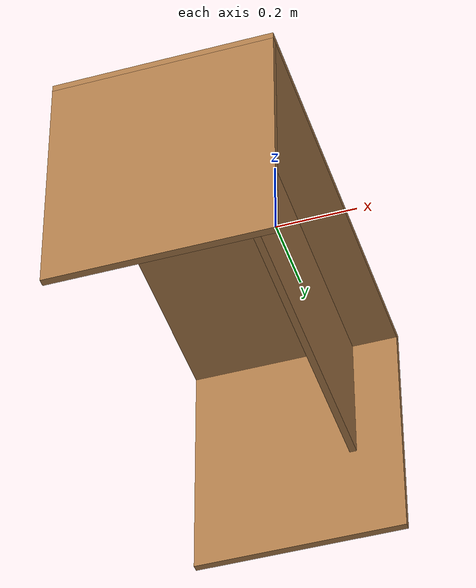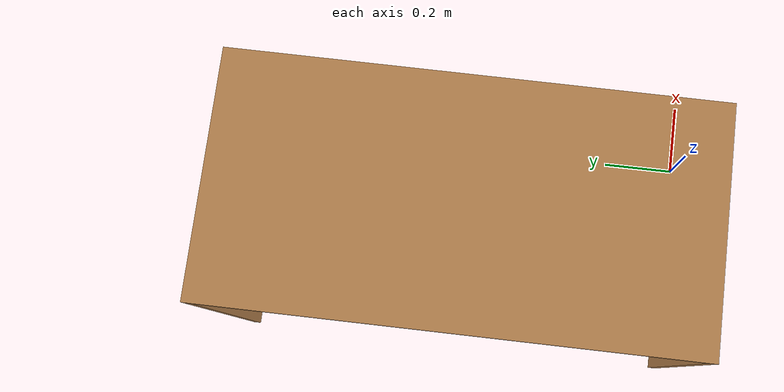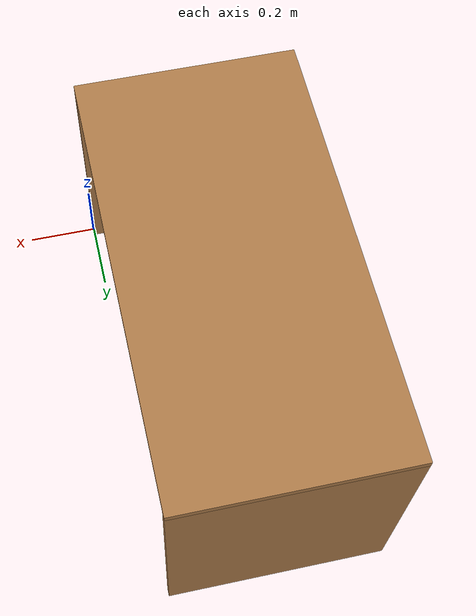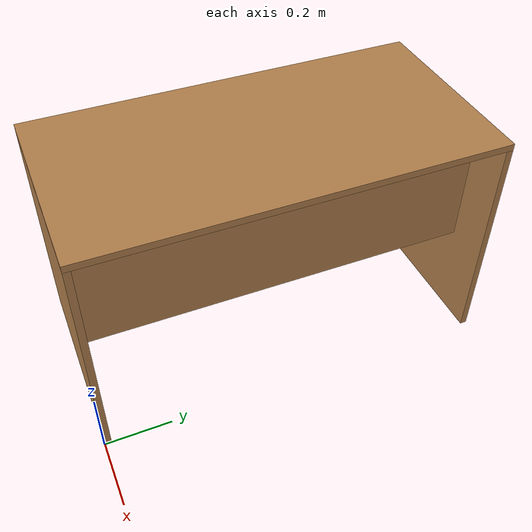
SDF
<?xml version="1.0" ?>
<sdf version="1.4">
    <model name='office_desk'>
      <link name='link'>
        <pose>0.0 0.0 0.0 0 0 0</pose>
        <inertial>
          <mass>10.0</mass>
          <inertia>
            <ixx>1</ixx>
            <ixy>0</ixy>
            <ixz>0</ixz>
            <iyy>1</iyy>
            <iyz>0</iyz>
            <izz>1</izz>
          </inertia>
        </inertial>
        <visual name='top_board'>
          <pose>-0.3 0.6 0.69 0 0 0</pose>
          <geometry>
            <box>
              <size>0.6 1.2 0.02</size>
            </box>
          </geometry>
          <material>
            <script>
              <uri>model://base_materials/wood/scripts/wood.material</uri>
              <name>base_materials/dark_wood</name>
            </script>
          </material>
        </visual>
        <collision name='collision_top_board'>
          <pose>-0.3 0.6 0.69 0 0 0</pose>
          <geometry>
            <box>
              <size>0.6 1.2 0.02</size>
            </box>
          </geometry>
          <max_contacts>10</max_contacts>
          <surface>
            <bounce/>
            <friction>
              <ode/>
            </friction>
            <contact>
              <ode/>
            </contact>
          </surface>
        </collision>
        <visual name='left_board'>
          <pose>-0.3 0.01 0.34 0 0 0</pose>
          <geometry>
            <box>
              <size>0.6 0.02 0.68</size>
            </box>
          </geometry>
          <material>
            <script>
              <uri>model://base_materials/wood/scripts/wood.material</uri>
              <name>base_materials/dark_wood</name>
            </script>
          </material>
        </visual>
        <collision name='collision_left_board'>
          <pose>-0.3 0.01 0.34 0 0 0</pose>
          <geometry>
            <box>
              <size>0.6 0.02 0.68</size>
            </box>
          </geometry>
          <max_contacts>10</max_contacts>
          <surface>
            <bounce/>
            <friction>
              <ode/>
            </friction>
            <contact>
              <ode/>
            </contact>
          </surface>
        </collision>
        <visual name='right_board'>
          <pose>-0.3 1.19 0.34 0 0 0</pose>
          <geometry>
            <box>
              <size>0.6 0.02 0.68</size>
            </box>
          </geometry>
          <material>
            <script>
              <uri>model://base_materials/wood/scripts/wood.material</uri>
              <name>base_materials/dark_wood</name>
            </script>
          </material>
        </visual>
        <collision name='collision_right_board'>
          <pose>-0.3 1.19 0.34 0 0 0</pose>
          <geometry>
            <box>
              <size>0.6 0.02 0.68</size>
            </box>
          </geometry>
          <max_contacts>10</max_contacts>
          <surface>
            <bounce/>
            <friction>
              <ode/>
            </friction>
            <contact>
              <ode/>
            </contact>
          </surface>
        </collision>
        <visual name='center_board'>
          <pose>-0.14 0.6 0.49 0 0 0</pose>
          <geometry>
            <box>
              <size>0.02 1.16 0.40</size>
            </box>
          </geometry>
          <material>
            <script>
              <uri>model://base_materials/wood/scripts/wood.material</uri>
              <name>base_materials/dark_wood</name>
            </script>
          </material>
        </visual>
        <collision name='ollision_center_board'>
          <pose>-0.14 0.6 0.49 0 0 0</pose>
          <geometry>
            <box>
              <size>0.02 1.16 0.40</size>
            </box>
          </geometry>
          <max_contacts>10</max_contacts>
          <surface>
            <bounce/>
            <friction>
              <ode/>
            </friction>
            <contact>
              <ode/>
            </contact>
          </surface>
        </collision>
        <velocity_decay>
          <linear>0</linear>
          <angular>0</angular>
        </velocity_decay>
        <self_collide>0</self_collide>
        <kinematic>0</kinematic>
        <gravity>1</gravity>
      </link>
      <static>1</static>
    </model>
</sdf>
